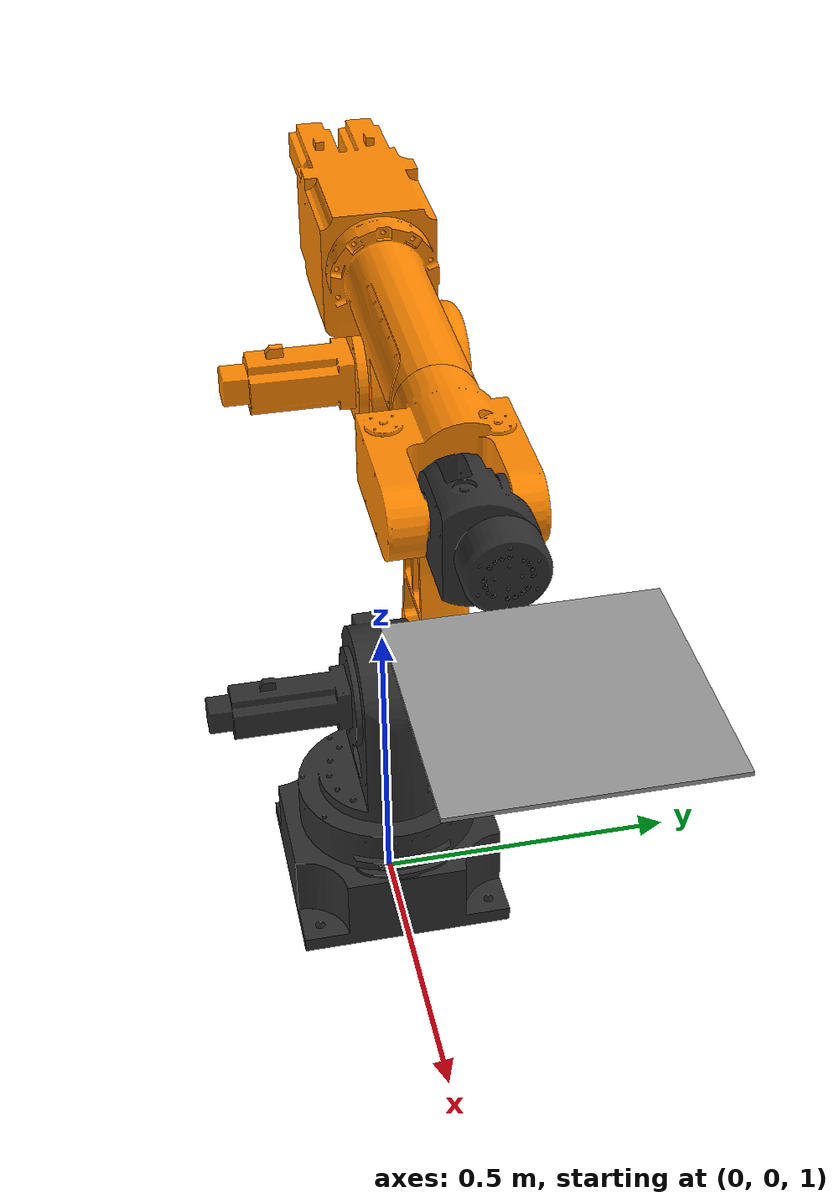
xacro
<robot name="fum6r_new_corsys">

  <material name="Orange">
    <color rgba="1.0 0.53 0.0 1.0"/>
    <specular>1.0 1.0 1.0 1.0</specular>
  </material>

  <material name="Black">
    <color rgba="0.18 0.18 0.18 1.0"/>
    <specular>1.0 1.0 1.0 1.0</specular>
  </material>

  <link name= "world" />

  <joint name= "worldJ0" type="fixed">
      <origin xyz="0 0 1" rpy="0 0 0" />
      <parent
      link="world" />
    <child
      link="6RL0" />
    <dynamics damping="0.1" friction="0.1"/>
  </joint>

  <link name="6RL0">
    <inertial>
      <origin xyz="0.0028 0.0 0.0588" rpy="0 0 0" />
      <mass value="31.781" />
      <inertia
        ixx="0.37456"
        ixy="0.0"
        ixz="-0.0014"
        iyy="0.3642"
        iyz="0.0"
        izz="0.6497" />
    </inertial>
    <visual>
      <origin xyz="0 0 0" rpy="0 0 0" />
      <geometry>
        <mesh
          filename="/home/aagiser/fum6r_ws/src/ros2_control_bringing_up/meshes/6RL0.STL" />
      </geometry>
      <material name="Black"/>
    </visual>
    <collision>
      <origin xyz="0 0 0" rpy="0 0 0" />
      <geometry>
        <mesh
          filename="/home/aagiser/fum6r_ws/src/ros2_control_bringing_up/meshes/6RL0.STL" />
      </geometry>
    </collision>
  </link>
  <link name="6RL1">
    <inertial>
      <origin xyz="-0.0164 -0.0196 -0.1313" rpy="0 0 0" />
      <mass value="29.9228" />
      <inertia
        ixx="0.5574"
        ixy="-0.0087"
        ixz="-0.0176"
        iyy="0.6014"
        iyz="-0.0759"
        izz="0.3616" />
    </inertial>
    <visual>
      <origin xyz="0 0 0" rpy="0 0 0" />
      <geometry>
        <mesh
          filename="/home/aagiser/fum6r_ws/src/ros2_control_bringing_up/meshes/6RL1.STL" />
      </geometry>
      <material name="Black"/>
    </visual>
    <collision>
      <origin
        xyz="0 0 0"
        rpy="0 0 0" />
      <geometry>
        <mesh
          filename="/home/aagiser/fum6r_ws/src/ros2_control_bringing_up/meshes/6RL1.STL" />
      </geometry>
    </collision>
  </link>
  <joint name="6RJ1" type="revolute">
    <origin xyz="0 0 0.3895" rpy="0.00000000 0.00000000 0.00000000" />
    <parent link="6RL0" />
    <child link="6RL1" />
    <axis xyz="0 0 1" />
    <limit
      lower="-1.79769e+308"
      upper="1.79769e+308"
      effort="-1"
      velocity="-1" />
  </joint>
  <transmission name="6r_joint1_transmission">
    <type>transmission_interface/SimpleTransmission</type>
    <joint name="6RJ1">
      <hardwareInterface>hardware_interface/EffortJointInterface</hardwareInterface>
    </joint>
    <actuator name="6r_joint1_actuator">
      <mechanicalReduction>1</mechanicalReduction>
    </actuator>
  </transmission>
  <link name="6RL2">
    <inertial>
      <origin xyz="0.0 0.0823 0.1827" rpy="0 0 0" />
      <mass value="16.8897" />
      <inertia
        ixx="0.067"
        ixy="0.0"
        ixz="0.0"
        iyy="1.000"
        iyz="0.000"
        izz="1.034" />
    </inertial>
    <visual>
      <origin
        xyz="0 0 0"
        rpy="0 0 0" />
      <geometry>
        <mesh
          filename="/home/aagiser/fum6r_ws/src/ros2_control_bringing_up/meshes/6RL2.STL" />
      </geometry>
      <material name="Orange"/>
    </visual>
    <ambient>0.8 0.8 0.8 1</ambient>
    <diffuse>0.8 0.8 0.8 1</diffuse>
    <specular>0.8 0.8 0.8 1</specular>
    <collision>
      <origin
        xyz="0 0 0"
        rpy="0 0 0" />
      <geometry>
        <mesh
          filename="/home/aagiser/fum6r_ws/src/ros2_control_bringing_up/meshes/6RL2.STL" />
      </geometry>
    </collision>
  </link>
  <joint name="6RJ2" type="revolute">
    <origin xyz="0 0 0" rpy="0.00000000 0.0 0.00000000" />
    <parent link="6RL1" />
    <child link="6RL2" />
    <axis xyz="0 1 0" />
    <limit
      lower="-1.79769e+308"
      upper="1.79769e+308"
      effort="-1"
      velocity="-1" />
    <dynamics damping="0.1" friction="0.1"/>
  </joint>
  <transmission name="6r_joint2_transmission">
    <type>transmission_interface/SimpleTransmission</type>
    <joint name="6RJ2">
      <hardwareInterface>hardware_interface/EffortJointInterface</hardwareInterface>
    </joint>
    <actuator name="6r_joint2_actuator">
      <mechanicalReduction>1</mechanicalReduction>
    </actuator>
  </transmission>
  <link name="6RL3">
    <inertial>
      <origin xyz="0.0017 -0.0031 0.1282" rpy="0 0 0" />
      <mass value="24.1602" />
      <inertia
        ixx="0.618"
        ixy="-0.0053"
        ixz="-0.019"
        iyy="0.331"
        iyz="-0.005"
        izz="0.791" />
    </inertial>
    <visual>
      <origin
        xyz="0 0 0"
        rpy="0 0 0" />
      <geometry>
        <mesh
          filename="/home/aagiser/fum6r_ws/src/ros2_control_bringing_up/meshes/6RL3.STL" />
      </geometry>
      <material name="Orange"/>
    </visual>
    <ambient>0.8 0.8 0.8 1</ambient>
    <diffuse>0.8 0.8 0.8 1</diffuse>
    <specular>0.8 0.8 0.8 1</specular>
    <collision>
      <origin
        xyz="0 0 0"
        rpy="0 0 0" />
      <geometry>
        <mesh
          filename="/home/aagiser/fum6r_ws/src/ros2_control_bringing_up/meshes/6RL3.STL" />
      </geometry>
    </collision>
  </link>
  <joint name="6RJ3" type="revolute">
    <origin xyz="0 0 0.6" rpy="0.00000000 0.0 0.00000000" />
    <parent link="6RL2" />
    <child link="6RL3" />
    <axis xyz="0 1 0" />
    <limit
      lower="-1.79769e+308"
      upper="1.79769e+308"
      effort="-1"
      velocity="-1" />
    <dynamics damping="0.1" friction="0.1"/>
  </joint>
  <transmission name="6r_joint3_transmission">
    <type>transmission_interface/SimpleTransmission</type>
    <joint name="6RJ3">
      <hardwareInterface>hardware_interface/EffortJointInterface</hardwareInterface>
    </joint>
    <actuator name="6r_joint3_actuator">
      <mechanicalReduction>1</mechanicalReduction>
    </actuator>
  </transmission>
  <link name="6RL4">
    <inertial>
      <origin xyz="-0.1232 -0.0146 0.0004" rpy="0 0 0" />
      <mass value="4.7423" />
      <inertia
        ixx="0.040"
        ixy="0.000"
        ixz="0.000"
        iyy="0.032"
        iyz="0.004"
        izz="0.018" />
    </inertial>
    <visual>
      <origin xyz="0 0 0" rpy="0 0 0" />
      <geometry>
        <mesh
          filename="/home/aagiser/fum6r_ws/src/ros2_control_bringing_up/meshes/6RL4.STL" />
      </geometry>
      <material name="Orange"/>
    </visual>
    <ambient>0.8 0.8 0.8 1</ambient>
    <diffuse>0.8 0.8 0.8 1</diffuse>
    <specular>0.8 0.8 0.8 1</specular>
    <collision>
      <origin
        xyz="0 0 0"
        rpy="0 0 0" />
      <geometry>
        <mesh
          filename="/home/aagiser/fum6r_ws/src/ros2_control_bringing_up/meshes/6RL4.STL" />
      </geometry>
    </collision>
  </link>
  <joint name="6RJ4" type="revolute">
    <origin xyz="0.6855 0 0.2" rpy="0.00000000 0.00000000 0.00000000" />
    <parent link="6RL3" />
    <child link="6RL4" />
    <axis xyz="1 0 0" />
    <limit
      lower="-1.79769e+308"
      upper="1.79769e+308"
      effort="-1"
      velocity="-1" />
    <dynamics damping="0.1" friction="0.1"/>
  </joint>
  <transmission name="6r_joint4_transmission">
    <type>transmission_interface/SimpleTransmission</type>
    <joint name="6RJ4">
      <hardwareInterface>hardware_interface/EffortJointInterface</hardwareInterface>
    </joint>
    <actuator name="6r_joint4_actuator">
      <mechanicalReduction>1</mechanicalReduction>
    </actuator>
  </transmission>
  <link name="6RL5">
    <inertial>
      <origin xyz="0.0205 -0.0131 -0.0026" rpy="0 0 0" />
      <mass value="2.615" />
      <inertia
        ixx="0.007"
        ixy="0.0002"
        ixz="0.0001"
        iyy="0.006"
        iyz="0.0001"
        izz="0.008" />
    </inertial>
    <visual>
      <origin xyz="0 0 0" rpy="0 0 0" />
      <geometry>
        <mesh
          filename="/home/aagiser/fum6r_ws/src/ros2_control_bringing_up/meshes/6RL5.STL" />
      </geometry>
      <material name="Black"/>
    </visual>
    <ambient>0.0 0.0 0.0 0.8</ambient>
    <diffuse>0.0 0.0 0.0 0.8</diffuse>
    <specular>0.8 0.8 0.8 1</specular>
    <collision>
      <origin
        xyz="0 0 0"
        rpy="0 0 0" />
      <geometry>
        <mesh
          filename="/home/aagiser/fum6r_ws/src/ros2_control_bringing_up/meshes/6RL5.STL" />
      </geometry>
    </collision>
  </link>
  <joint name="6RJ5" type="revolute">
    <origin xyz="0 0 0" rpy="0.00000000 0.00000000 0.00000000" />
    <parent link="6RL4" />
    <child link="6RL5" />
    <axis xyz="0 1 0" />
    <limit
      lower="-1.79769e+308"
      upper="1.79769e+308"
      effort="-1"
      velocity="-1" />
    <dynamics damping="0.1" friction="0.1"/>
  </joint>
  <transmission name="6r_joint5_transmission">
    <type>transmission_interface/SimpleTransmission</type>
    <joint name="6RJ5">
      <hardwareInterface>hardware_interface/EffortJointInterface</hardwareInterface>
    </joint>
    <actuator name="6r_joint5_actuator">
      <mechanicalReduction>1</mechanicalReduction>
    </actuator>
  </transmission>
  <link name="6RL6">
    <inertial>
      <origin xyz="0.1084 0.0 0.0" rpy="0 0 0" />
      <mass value="0.955" />
      <inertia
        ixx="0.0011"
        ixy="0.0"
        ixz="0.0"
        iyy="0.0008"
        iyz="0.0"
        izz="0.0008" />
    </inertial>
    <visual>
      <originv xyz="0 0 0" rpy="0 0 0" />
      <geometry>
        <mesh
          filename="/home/aagiser/fum6r_ws/src/ros2_control_bringing_up/meshes/6RL6.STL" />
      </geometry>
      <material name="Black"/>
    </visual>
    <ambient>0.0 0.0 0.0 0.8</ambient>
    <diffuse>0.0 0.0 0.0 0.8</diffuse>
    <specular>0.8 0.8 0.8 1</specular>
    <collision>
      <origin
        xyz="0 0 0"
        rpy="0 0 0" />
      <geometry>
        <mesh
          filename="/home/aagiser/fum6r_ws/src/ros2_control_bringing_up/meshes/6RL6.STL" />
      </geometry>
    </collision>
  </link>
  <joint name="6RJ6" type="revolute">
    <origin xyz="0 0 0" rpy="0.00000000 0.00000000 0.00000000" />
    <parent link="6RL5" />
    <child link="6RL6" />
    <axis xyz="1 0 0" />
    <limit
      lower="-1.79769e+308"
      upper="1.79769e+308"
      effort="-1"
      velocity="-1" />
    <dynamics damping="0.1" friction="0.1"/>
  </joint>
  <transmission name="6r_joint6_transmission">
    <type>transmission_interface/SimpleTransmission</type>
    <joint name="6RJ6">
      <hardwareInterface>hardware_interface/EffortJointInterface</hardwareInterface>
    </joint>
    <actuator name="6r_joint6_actuator">
      <mechanicalReduction>1</mechanicalReduction>
    </actuator>
  </transmission>
  <link name="plate">
    <visual>
      <geometry>
        <box size="0.3 0.3 0.005"/>
      </geometry>
    </visual>
    <collision>
      <origin
        xyz="0 0 0"
        rpy="0 0 0" />
      <geometry>
        <box size="0.3 0.3 0.005"/>
      </geometry>
    </collision>
  </link>

  <joint name= "EEJ" type="fixed">
    <origin xyz="0.341 0 0" rpy="0 0 0" />
    <parent
      link="6RL6" />
    <child
      link="plate" />
  </joint>

  <gazebo reference="6RL0">
    <material>Gazebo/Orange</material>
  </gazebo>

  <gazebo reference="6RL1">
    <material>
      <ambient>0.0 0.0 0.0 0.8</ambient>
      <diffuse>0.0 0.0 0.0 0.8</diffuse>
      <specular>0.8 0.8 0.8 1</specular>
    </material>
  </gazebo>

  <gazebo reference="6RL2">
    <ambient>0.8 0.8 0.8 1</ambient>
    <diffuse>0.8 0.8 0.8 1</diffuse>
    <specular>0.8 0.8 0.8 1</specular>
  </gazebo>

  <gazebo reference="6RL3">
    <ambient>0.8 0.8 0.8 1</ambient>
    <diffuse>0.8 0.8 0.8 1</diffuse>
    <specular>0.8 0.8 0.8 1</specular>
  </gazebo>

  <gazebo reference="6RL4">
    <ambient>0.8 0.8 0.8 1</ambient>
    <diffuse>0.8 0.8 0.8 1</diffuse>
    <specular>0.8 0.8 0.8 1</specular>
  </gazebo>

  <gazebo reference="6RL5">
    <ambient>0.0 0.0 0.0 0.8</ambient>
    <diffuse>0.0 0.0 0.0 0.8</diffuse>
    <specular>0.8 0.8 0.8 1</specular>
  </gazebo>

  <gazebo reference="6RL6">
    <ambient>0.0 0.0 0.0 0.8</ambient>
    <diffuse>0.0 0.0 0.0 0.8</diffuse>
    <specular>0.8 0.8 0.8 1</specular>
  </gazebo>

  <gazebo reference="plate">
    <material>Gazebo/Grey</material>
  </gazebo>

  <gazebo>
    <world name="default">
      <light name='pointlight' type='point'>
        <pose>0.355414 0.448622 2 0 -0 0</pose>
        <cast_shadows>true</cast_shadows>
        <intensity>1</intensity>
        <direction>0 0 0</direction>
        <diffuse>0.5 0.5 0.5 1</diffuse>
        <specular>0.5 0.5 0.5 1</specular>
        <attenuation>
          <range>4</range>
          <linear>0.5</linear>
          <constant>0.20000000000000001</constant>
          <quadratic>0.01</quadratic>
        </attenuation>
        <spot>
          <inner_angle>0</inner_angle>
          <outer_angle>0</outer_angle>
          <falloff>0</falloff>
        </spot>
      </light>
    </world>
  </gazebo>

  <ros2_control name="GazeboSystem" type="system">
    <hardware>
      <plugin>ign_ros2_control/IgnitionSystem</plugin>
    </hardware>
    <joint name="6RJ1">
      <param name="initial_position">0.000</param>
      <command_interface name="effort"/>
      <state_interface name="position"/>
      <state_interface name="velocity"/>
    </joint>
    <joint name="6RJ2">
      <param name="initial_position">0.000</param>
      <command_interface name="effort"/>
      <state_interface name="position"/>
      <state_interface name="velocity"/>
    </joint>
    <joint name="6RJ3">
      <param name="initial_position">0.000</param>
      <command_interface name="effort"/>
      <state_interface name="position"/>
      <state_interface name="velocity"/>
    </joint>
    <joint name="6RJ4">
      <param name="initial_position">0.000</param>
      <command_interface name="effort"/>
      <state_interface name="position"/>
      <state_interface name="velocity"/>
    </joint>
    <joint name="6RJ5">
      <param name="initial_position">0.000</param>
      <command_interface name="effort"/>
      <state_interface name="position"/>
      <state_interface name="velocity"/>
    </joint>
    <joint name="6RJ6">
      <param name="initial_position">0.000</param>
      <command_interface name="effort"/>
      <state_interface name="position"/>
      <state_interface name="velocity"/>
    </joint>
  </ros2_control>

</robot>
